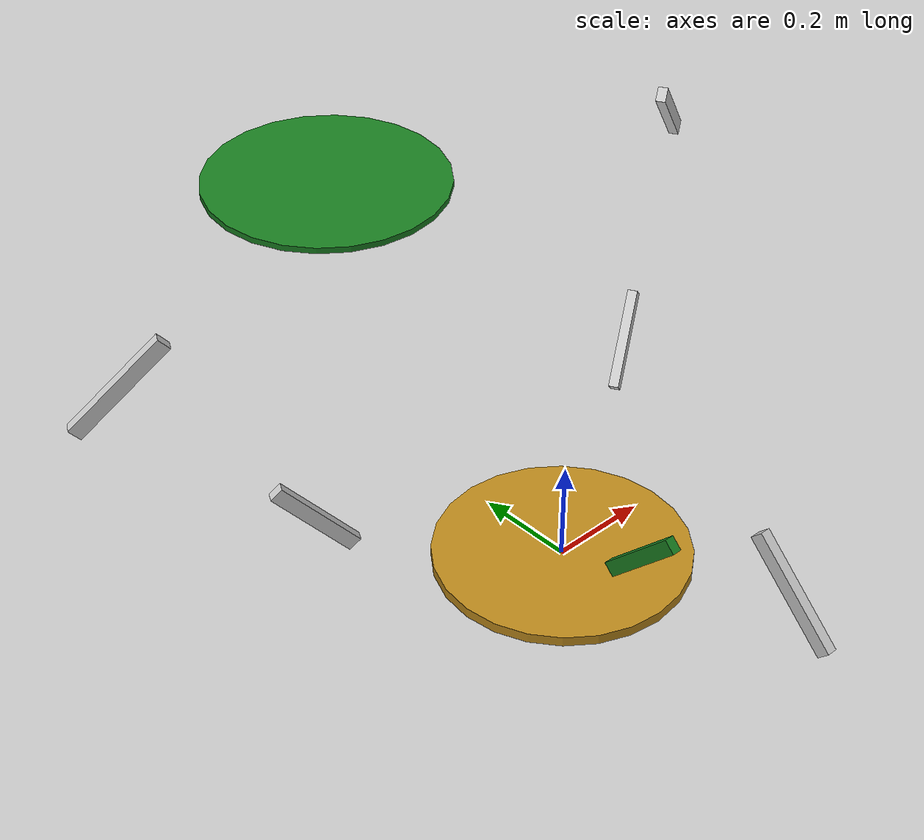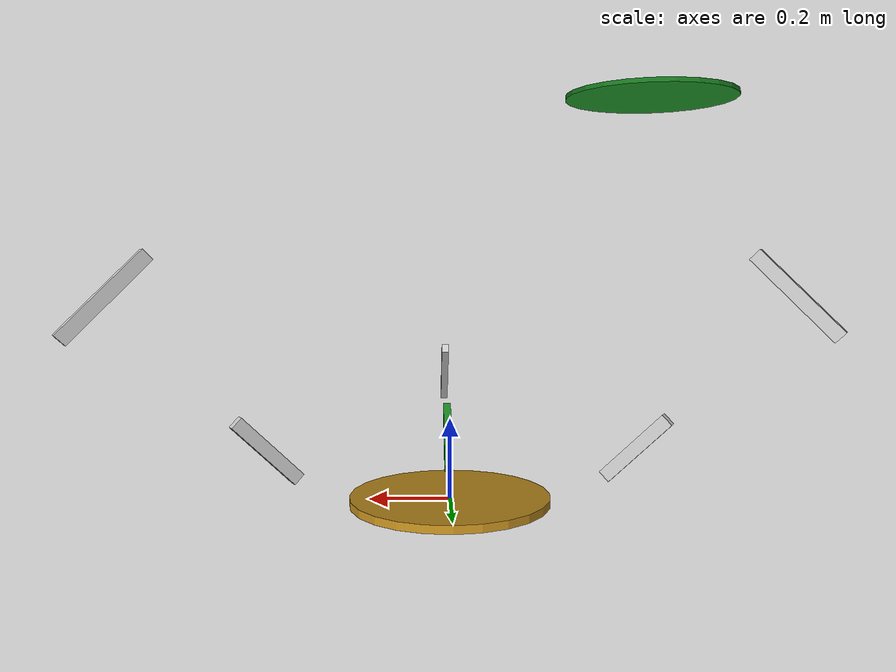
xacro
<?xml version="1.0"?>
<robot xmlns:xacro="http://www.ros.org/wiki/xacro">

    <xacro:include filename="macros.xacro" />

    <link name="base_link">

    </link>

    <joint name="spodnja_plosca_joint" type="fixed">
        <parent link="base_link"/>
        <child link="spodnja_plosca"/>

    </joint>

    <link name="spodnja_plosca">
        <visual>
            <origin xyz="0 0 0"/>
            <geometry>
                <cylinder radius="0.25" length="0.02"/>
            </geometry>
            <material name="orange"/>
        </visual>

        <xacro:inertial_cylinder mass="1.5" length="0.02" radius="0.25">
            <origin xyz="0.0 0.0 0.0" rpy="0.0 0.0 0.0"/>
        </xacro:inertial_cylinder>
    </link>

    --spodnja roka 1
    <joint name="sp_joint_1" type="revolute">
        <origin xyz="0.0 -0.2 0.0525" rpy="0.0 0.0 0.0"/>
        <parent link="spodnja_plosca"/>
        <child link="sp_roka_1"/>
        <axis xyz="1.0 0.0 0.0"/>
        <limit lower="-5.0" upper="2.0" effort="100.0" velocity="100.0"/>
    </joint>

    <link name="sp_roka_1">
        <visual>
            <origin xyz="0.0 0 0.061605" rpy="-0.7854 0.0 0.0"/>
            <geometry>
                <box size="0.02 0.2 0.03"/>
            </geometry>
            <material name="green"/>
        </visual>
        <xacro:inertial_box mass="0.1" x="0.02" y="0.2" z="0.03">
            <origin xyz="0.0 -0.27071 0.12321" rpy="0.7854 0.0 0.0"/>
        </xacro:inertial_box>
    </link>

    --spodnja roka 2
    <joint name="sp_joint_2" type="revolute">
        <origin xyz="0.1732 0.100 0.0525" rpy="0.0 0.0 0.0"/>
        <parent link="spodnja_plosca"/>
        <child link="sp_roka_2"/>
        <axis xyz="-0.5 0.866 0"/>
        <limit lower="0.0" upper="2.0" effort="100.0" velocity="100.0"/>
    </joint>

    <link name="sp_roka_2">
        <visual>
            <origin xyz="0.23444 0.134344 0.12321" rpy="-0.7854 0 2.094395"/>
            <geometry>
                <box size="0.02 0.2 0.03"/>
            </geometry>
            <material name="grey"/>
        </visual>
        <xacro:inertial_box mass="0.1" x="0.02" y="0.2" z="0.03">
            <origin xyz="0.23444 0.134344 0.12321" rpy="-0.7854 0 2.094395"/>
        </xacro:inertial_box>
    </link>

    --spodnja roka 3
    <joint name="sp_joint_3" type="revolute">
        <origin xyz="-0.1732 0.100 0.0525" rpy="0.0 0.0 0.0"/>
        <parent link="spodnja_plosca"/>
        <child link="sp_roka_3"/>
        <axis xyz="0.5 0.866 0"/>
        <limit lower="0.0" upper="2.0" effort="100.0" velocity="100.0"/>
    </joint>

    <link name="sp_roka_3">
        <visual>
            <origin xyz="-0.23444 0.134344 0.12321" rpy="-0.7854 0 -2.094395"/>
            <geometry>
                <box size="0.02 0.2 0.03"/>
            </geometry>
            <material name="grey"/>
        </visual>
        <xacro:inertial_box mass="0.1" x="0.02" y="0.2" z="0.03">
            <origin xyz="-0.23444 0.134344 0.12321" rpy="-0.7854 0 -2.094395"/>
        </xacro:inertial_box>
    </link>

    --zgornja roka 1
    <joint name="zg_joint_1" type="revolute">
        <origin xyz="0 -0.34142 0.19392" rpy="0.0 0.0 0.0"/>
        <parent link="sp_roka_1"/>
        <child link="zg_roka_1"/>
        <axis xyz="1 0 0"/>
        <limit lower="-5.0" upper="2.0" effort="100.0" velocity="100.0"/>
    </joint>

    <link name="zg_roka_1">
        <visual>
            <origin xyz="-0 0 0" rpy="0.7854 0 0"/>
            <geometry>
                <box size="0.02 0.23481 0.03"/>
            </geometry>
            <material name="grey"/>
        </visual>
        <xacro:inertial_box mass="0.1" x="0.02" y="0.2" z="0.03">
            <origin xyz="-0 -0.2584 0.27694" rpy="0.7854 0.0 0.0"/>
        </xacro:inertial_box>
    </link>

    --zgornja roka 2
    <joint name="zg_joint_2" type="revolute">
        <origin xyz="0.29568 0.17071 0.19392" rpy="0.0 0.0 0.0"/>
        <parent link="sp_roka_2"/>
        <child link="zg_roka_2"/>
        <axis xyz="1 0 0"/>
        <limit lower="0.0" upper="2.0" effort="100.0" velocity="100.0"/>
    </joint>

    <link name="zg_roka_2">
        <visual>
            <origin xyz="0.22378 0.1292 0.27694" rpy="0.7854 0 2.094395"/>
            <geometry>
                <box size="0.02 0.23481 0.03"/>
            </geometry>
            <material name="grey"/>
        </visual>
        <xacro:inertial_box mass="0.1" x="0.02" y="0.2" z="0.03">
            <origin xyz="0.22378 0.1292 0.27694" rpy="0.7854 0 2.094395"/>
        </xacro:inertial_box>
    </link>

    --zgornja roka 3
    <joint name="zg_joint_3" type="revolute">
        <origin xyz="-0.29568 0.17071 0.19392" rpy="0.0 0.0 0.0"/>
        <parent link="sp_roka_3"/>
        <child link="zg_roka_3"/>
        <axis xyz="1 0 0"/>
        <limit lower="0.0" upper="2.0" effort="100.0" velocity="100.0"/>
    </joint>

    <link name="zg_roka_3">
        <visual>
            <origin xyz="-0.22378 0.1292 0.27694" rpy="0.7854 0 -2.094395"/>
            <geometry>
                <box size="0.02 0.23481 0.03"/>
            </geometry>
            <material name="grey"/>
        </visual>
        <xacro:inertial_box mass="0.1" x="0.02" y="0.2" z="0.03">
            <origin xyz="-0.22378 0.1292 0.27694" rpy="0.7854 0 -2.094395"/>
        </xacro:inertial_box>
    </link>

    <joint name="vrh_joint_1" type="revolute">
        <origin xyz="0 -0.17538 0.35996" rpy="0.0 0.0 0.0"/>
        <parent link="zg_roka_3"/>
        <child link="zg_plosca"/>
        <limit lower="0.0" upper="2.0" effort="100.0" velocity="100.0"/>
    </joint>

    <link name="zg_plosca">
        <visual>
            <origin xyz="0 0 0.37"/>
            <geometry>
                <cylinder radius="0.2" length="0.01"/>
            </geometry>
            <material name="green"/>
        </visual>

        <xacro:inertial_cylinder mass="1.5" length="0.02" radius="0.25">
            <origin xyz="0.0 0.0 0.37" rpy="0.0 0.0 0.0"/>
        </xacro:inertial_cylinder>
    </link>

</robot>

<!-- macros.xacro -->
<robot xmlns:xacro="http://www.ros.org/wiki/xacro" >

    <!-- This file is not a robot in and of itself, it just contains some useful tags that could be included in any robot -->

    <!-- Specify some colours -->

    <material name="white">

        <color rgba="1 1 1 1"/>

    </material>
11
    <material name="blue">

        <color rgba="0.2 0.2 1 1"/>

    </material>

    <material name="green">

        <color rgba="0.1 0.5 0.13 1"/>

    </material>

    <material name="grey">

        <color rgba="0.8 0.8 0.8 1"/>

    </material>

    <material name="orange">

        <color rgba="0.74 0.54 0.11 1"/>

    </material>

    <!-- Specify some standard inertial calculations https://en.wikipedia.org/wiki/List_of_moments_of_inertia -->

    <!-- These make use of xacro's mathematical functionality -->

    <xacro:macro name="inertial_sphere" params="mass radius *origin">

        <inertial>

            <xacro:insert_block name="origin"/>

            <mass value="${mass}" />

            <inertia ixx="${(2/5) * mass * (radius*radius)}" ixy="0.0" ixz="0.0"

                    iyy="${(2/5) * mass * (radius*radius)}" iyz="0.0"

                    izz="${(2/5) * mass * (radius*radius)}" />

        </inertial>

    </xacro:macro>

    <xacro:macro name="inertial_box" params="mass x y z *origin">

        <inertial>

            <xacro:insert_block name="origin"/>

            <mass value="${mass}" />

            <inertia ixx="${(1/12) * mass * (y*y+z*z)}" ixy="0.0" ixz="0.0"

                    iyy="${(1/12) * mass * (x*x+z*z)}" iyz="0.0"

                    izz="${(1/12) * mass * (x*x+y*y)}" />

        </inertial>

    </xacro:macro>

    <xacro:macro name="inertial_cylinder" params="mass length radius *origin">

        <inertial>

            <xacro:insert_block name="origin"/>

            <mass value="${mass}" />

            <inertia ixx="${(1/12) * mass * (3*radius*radius + length*length)}" ixy="0.0" ixz="0.0"

                    iyy="${(1/12) * mass * (3*radius*radius + length*length)}" iyz="0.0"

                    izz="${(1/2) * mass * (radius*radius)}" />

        </inertial>

    </xacro:macro>

</robot>
